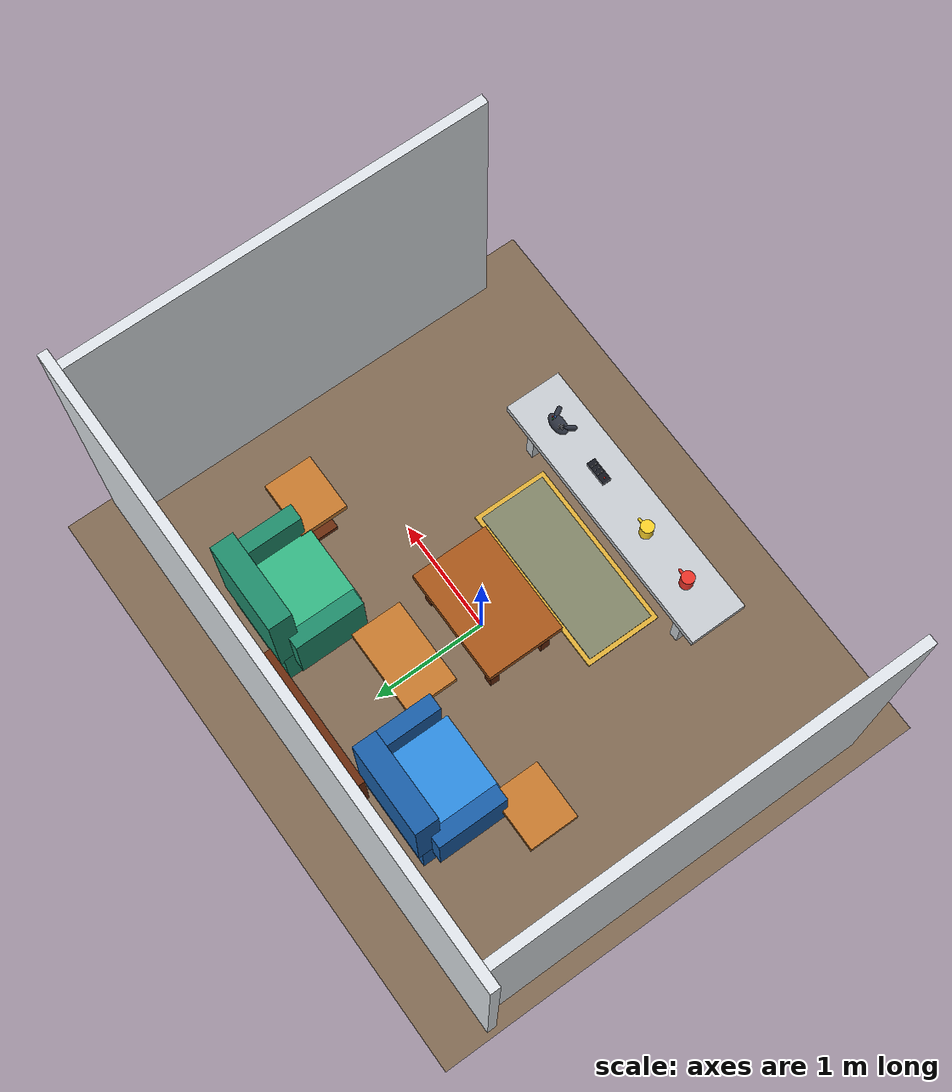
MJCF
<mujoco model="L2 living room region allocation ablation">
  <compiler angle="radian"/>
  <option timestep="0.002" gravity="0 0 -9.81" integrator="implicitfast"/>
  <visual>
    <global offwidth="1280" offheight="960"/>
    <quality shadowsize="4096"/>
    <map znear="0.01" zfar="9"/>
  </visual>
  <default>
    <geom condim="4" friction="1.0 0.03 0.01"/>
    <joint damping="1"/>
  </default>
  <asset>
    <texture name="a2_floor_tex" type="2d" builtin="checker"
             rgb1="0.56 0.47 0.37" rgb2="0.45 0.36 0.28"
             width="512" height="512"/>
    <material name="a2_floor" texture="a2_floor_tex" texrepeat="9 8"
              reflectance="0.04"/>
    <texture name="a2_rug_tex" type="2d" builtin="checker"
             rgb1="0.12 0.31 0.58" rgb2="0.90 0.74 0.24"
             width="512" height="512"/>
    <material name="a2_rug" texture="a2_rug_tex" texrepeat="7 4"/>
    <material name="a2_wall" rgba="0.88 0.90 0.92 1"/>
    <material name="a2_wood" rgba="0.42 0.17 0.055 1"/>
    <material name="a2_wood_light" rgba="0.78 0.48 0.18 1"/>
    <material name="a2_coffee" rgba="0.66 0.34 0.10 1"/>
    <material name="a2_seat_a" rgba="0.10 0.37 0.66 1"/>
    <material name="a2_seat_b" rgba="0.12 0.55 0.42 1"/>
    <material name="a2_mug_a" rgba="0.92 0.20 0.16 1"/>
    <material name="a2_mug_b" rgba="0.98 0.82 0.16 1"/>
    <material name="a2_remote" rgba="0.08 0.09 0.12 1"/>
    <material name="a2_controller" rgba="0.18 0.20 0.25 1"/>
    <material name="a2_staging" rgba="0.78 0.80 0.82 1"/>
    <material name="a2_tv" rgba="0.02 0.025 0.035 1"/>
  </asset>
  <worldbody>
    <light name="a2_key" pos="-1.8 -2.0 4.0" dir="0.3 0.4 -1"
           directional="true" diffuse="0.92 0.88 0.82"/>
    <light name="a2_fill" pos="2.0 -0.8 3.2" dir="-0.4 0.2 -1"
           directional="true" diffuse="0.64 0.72 0.86"/>
    <light name="a2_back" pos="0 1.6 3.0" dir="0 -0.5 -1"
           diffuse="0.52 0.50 0.46"/>

    <geom name="a2_floor" type="plane" size="2.6 2.2 0.05"
          material="a2_floor"/>
    <geom name="a2_north_wall" type="box" pos="0 1.75 1.4"
          size="2.55 0.04 1.4" material="a2_wall"/>
    <geom name="a2_west_wall" type="box" pos="-2.40 0 1.4"
          size="0.04 1.75 1.4" material="a2_wall"/>
    <geom name="a2_east_wall" type="box" pos="2.40 0 1.4"
          size="0.04 1.75 1.4" material="a2_wall"/>

    <!-- Two visible and spatially distinct seating targets. -->
    <body name="a2_seat_left">
      <geom name="a2_seat_left_base" type="box" pos="-0.90 1.12 0.25"
            size="0.38 0.34 0.25" material="a2_seat_a"/>
      <geom name="a2_seat_left_cushion" type="box" pos="-0.90 1.00 0.53"
            size="0.34 0.28 0.08" rgba="0.18 0.55 0.88 1"/>
      <geom name="a2_seat_left_back" type="box" pos="-0.90 1.39 0.92"
            size="0.38 0.10 0.46" material="a2_seat_a"/>
      <geom name="a2_seat_left_arm_l" type="box" pos="-1.31 1.07 0.63"
            size="0.07 0.30 0.30" material="a2_seat_a"/>
      <geom name="a2_seat_left_arm_r" type="box" pos="-0.49 1.07 0.63"
            size="0.07 0.30 0.30" material="a2_seat_a"/>
    </body>
    <body name="a2_seat_right">
      <geom name="a2_seat_right_base" type="box" pos="0.90 1.12 0.25"
            size="0.38 0.34 0.25" material="a2_seat_b"/>
      <geom name="a2_seat_right_cushion" type="box" pos="0.90 1.00 0.53"
            size="0.34 0.28 0.08" rgba="0.20 0.72 0.52 1"/>
      <geom name="a2_seat_right_back" type="box" pos="0.90 1.39 0.92"
            size="0.38 0.10 0.46" material="a2_seat_b"/>
      <geom name="a2_seat_right_arm_l" type="box" pos="0.49 1.07 0.63"
            size="0.07 0.30 0.30" material="a2_seat_b"/>
      <geom name="a2_seat_right_arm_r" type="box" pos="1.31 1.07 0.63"
            size="0.07 0.30 0.30" material="a2_seat_b"/>
    </body>

    <!-- Dedicated personal drink supports. -->
    <body name="a2_personal_left">
      <geom name="a2_personal_left_top" type="box"
            pos="-1.48 0.60 0.59" size="0.25 0.21 0.035"
            material="a2_wood_light"/>
      <geom name="a2_personal_left_leg" type="cylinder"
            pos="-1.48 0.60 0.30" size="0.055 0.255"
            material="a2_wood"/>
      <geom name="a2_personal_left_foot" type="box"
            pos="-1.48 0.60 0.035" size="0.16 0.14 0.025"
            material="a2_wood"/>
    </body>
    <body name="a2_personal_right">
      <geom name="a2_personal_right_top" type="box"
            pos="1.48 0.60 0.59" size="0.25 0.21 0.035"
            material="a2_wood_light"/>
      <geom name="a2_personal_right_leg" type="cylinder"
            pos="1.48 0.60 0.30" size="0.055 0.255"
            material="a2_wood"/>
      <geom name="a2_personal_right_foot" type="box"
            pos="1.48 0.60 0.035" size="0.16 0.14 0.025"
            material="a2_wood"/>
    </body>

    <!-- Always-shared drink trap: compatible with both seats but one region. -->
    <body name="a2_shared_drink_trap">
      <geom name="a2_shared_drink_top" type="box" pos="0 0.72 0.56"
            size="0.37 0.22 0.035" material="a2_wood_light"/>
      <geom name="a2_shared_drink_leg" type="cylinder" pos="0 0.72 0.28"
            size="0.060 0.245" material="a2_wood"/>
      <geom name="a2_shared_drink_foot" type="box" pos="0 0.72 0.035"
            size="0.20 0.14 0.025" material="a2_wood"/>
    </body>

    <!-- Only robust shared-controls solution. -->
    <body name="a2_control_table">
      <geom name="a2_control_table_top" type="box" pos="0 -0.05 0.50"
            size="0.50 0.34 0.040" material="a2_coffee"/>
      <geom name="a2_control_leg_fl" type="box" pos="-0.40 -0.29 0.24"
            size="0.04 0.04 0.24" material="a2_wood"/>
      <geom name="a2_control_leg_fr" type="box" pos="0.40 -0.29 0.24"
            size="0.04 0.04 0.24" material="a2_wood"/>
      <geom name="a2_control_leg_bl" type="box" pos="-0.40 0.19 0.24"
            size="0.04 0.04 0.24" material="a2_wood"/>
      <geom name="a2_control_leg_br" type="box" pos="0.40 0.19 0.24"
            size="0.04 0.04 0.24" material="a2_wood"/>
    </body>

    <!-- Coherent geometric distractor. -->
    <body name="a2_rug">
      <geom name="a2_rug_surface" type="box" pos="0 -0.82 0.012"
            size="0.72 0.30 0.012" material="a2_rug"
            contype="0" conaffinity="0"/>
      <geom name="a2_rug_border" type="box" pos="0 -0.82 0.008"
            size="0.76 0.34 0.008" rgba="0.88 0.69 0.22 1"
            contype="0" conaffinity="0"/>
    </body>

    <body name="a2_media_wall">
      <geom name="a2_media_console" type="box" pos="0 1.62 0.34"
            size="0.62 0.12 0.30" material="a2_wood"/>
      <geom name="a2_tv" type="box" pos="0 1.68 1.15"
            size="0.62 0.025 0.36" material="a2_tv"/>
    </body>

    <!-- Staging surface is outside every destination-region volume. -->
    <body name="a2_staging">
      <geom name="a2_staging_top" type="box" pos="0 -1.34 0.58"
            size="1.18 0.25 0.035" material="a2_staging"/>
      <geom name="a2_staging_leg_l" type="box" pos="-0.95 -1.34 0.28"
            size="0.04 0.18 0.28" material="a2_staging"/>
      <geom name="a2_staging_leg_r" type="box" pos="0.95 -1.34 0.28"
            size="0.04 0.18 0.28" material="a2_staging"/>
    </body>

    <!-- Four fixed-role payload instances, discovered generically from free bodies. -->
    <body name="a2_drink_left" pos="-0.78 -1.34 0.685">
      <freejoint name="a2_drink_left_free"/>
      <geom name="a2_drink_left_cup" type="cylinder" size="0.055 0.070"
            material="a2_mug_a" mass="0.34"/>
      <geom name="a2_drink_left_handle" type="capsule" size="0.012"
            fromto="0.050 0 0.015 0.092 0 0.015"
            material="a2_mug_a" mass="0.04"/>
    </body>
    <body name="a2_drink_right" pos="-0.28 -1.34 0.685">
      <freejoint name="a2_drink_right_free"/>
      <geom name="a2_drink_right_cup" type="cylinder" size="0.055 0.070"
            material="a2_mug_b" mass="0.34"/>
      <geom name="a2_drink_right_handle" type="capsule" size="0.012"
            fromto="0.050 0 0.015 0.092 0 0.015"
            material="a2_mug_b" mass="0.04"/>
    </body>
    <body name="a2_remote_payload" pos="0.32 -1.34 0.635">
      <freejoint name="a2_remote_payload_free"/>
      <geom name="a2_remote_body" type="box" size="0.105 0.038 0.016"
            material="a2_remote" mass="0.20"/>
      <geom name="a2_remote_power" type="cylinder" size="0.007 0.004"
            pos="-0.070 0 0.020" rgba="0.86 0.15 0.12 1" mass="0.002"/>
      <geom name="a2_remote_key1" type="cylinder" size="0.006 0.004"
            pos="-0.020 -0.017 0.020" rgba="0.72 0.72 0.72 1" mass="0.002"/>
      <geom name="a2_remote_key2" type="cylinder" size="0.006 0.004"
            pos="-0.020 0.017 0.020" rgba="0.72 0.72 0.72 1" mass="0.002"/>
      <geom name="a2_remote_key3" type="cylinder" size="0.006 0.004"
            pos="0.020 -0.017 0.020" rgba="0.72 0.72 0.72 1" mass="0.002"/>
      <geom name="a2_remote_key4" type="cylinder" size="0.006 0.004"
            pos="0.020 0.017 0.020" rgba="0.72 0.72 0.72 1" mass="0.002"/>
      <geom name="a2_remote_key5" type="cylinder" size="0.006 0.004"
            pos="0.060 -0.017 0.020" rgba="0.72 0.72 0.72 1" mass="0.002"/>
      <geom name="a2_remote_key6" type="cylinder" size="0.006 0.004"
            pos="0.060 0.017 0.020" rgba="0.72 0.72 0.72 1" mass="0.002"/>
    </body>
    <body name="a2_controller_payload" pos="0.82 -1.32 0.650">
      <freejoint name="a2_controller_payload_free"/>
      <geom name="a2_controller_core" type="ellipsoid"
            size="0.105 0.060 0.026" material="a2_controller" mass="0.22"/>
      <geom name="a2_controller_left_grip" type="capsule" size="0.022"
            fromto="-0.060 -0.020 0 -0.100 -0.085 -0.006"
            material="a2_controller" mass="0.05"/>
      <geom name="a2_controller_right_grip" type="capsule" size="0.022"
            fromto="0.060 -0.020 0 0.100 -0.085 -0.006"
            material="a2_controller" mass="0.05"/>
      <geom name="a2_controller_dpad_h" type="box" size="0.025 0.007 0.005"
            pos="-0.042 0.005 0.030" rgba="0.04 0.04 0.05 1" mass="0.002"/>
      <geom name="a2_controller_dpad_v" type="box" size="0.007 0.025 0.005"
            pos="-0.042 0.005 0.030" rgba="0.04 0.04 0.05 1" mass="0.002"/>
      <geom name="a2_controller_button1" type="cylinder" size="0.007 0.005"
            pos="0.050 0.020 0.030" rgba="0.25 0.72 0.34 1" mass="0.002"/>
      <geom name="a2_controller_button2" type="cylinder" size="0.007 0.005"
            pos="0.065 0.005 0.030" rgba="0.75 0.22 0.20 1" mass="0.002"/>
      <geom name="a2_controller_button3" type="cylinder" size="0.007 0.005"
            pos="0.050 -0.010 0.030" rgba="0.25 0.48 0.85 1" mass="0.002"/>
    </body>

    <!-- Repositioned once to one fixed five-view rig before capture. -->
    <camera name="l2_camera_left" pos="-2.2 -2.3 1.8"
            xyaxes="0.8 -0.6 0 0.3 0.4 0.86" fovy="72"/>
    <camera name="l2_camera_right" pos="2.2 -2.3 1.8"
            xyaxes="0.8 0.6 0 -0.3 0.4 0.86" fovy="72"/>
    <camera name="l2_camera_top" pos="0 -0.2 3.7"
            xyaxes="1 0 0 0 1 0" fovy="76"/>
    <camera name="l2_camera_front" pos="0 -2.8 1.5"
            xyaxes="1 0 0 0 0.5 0.866" fovy="74"/>
    <camera name="l2_camera_close" pos="0 -2.0 1.2"
            xyaxes="1 0 0 0 0.45 0.89" fovy="78"/>
  </worldbody>
  <actuator/>
</mujoco>
